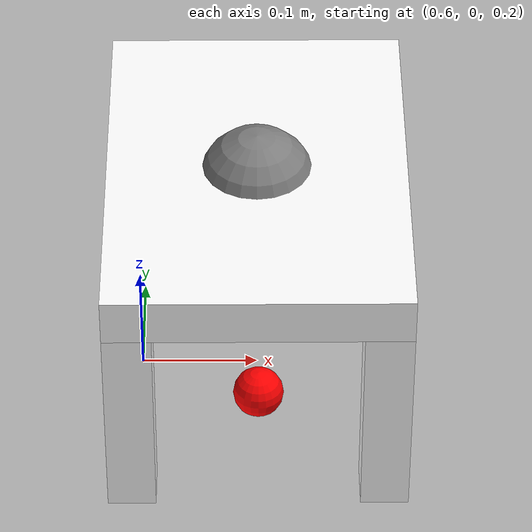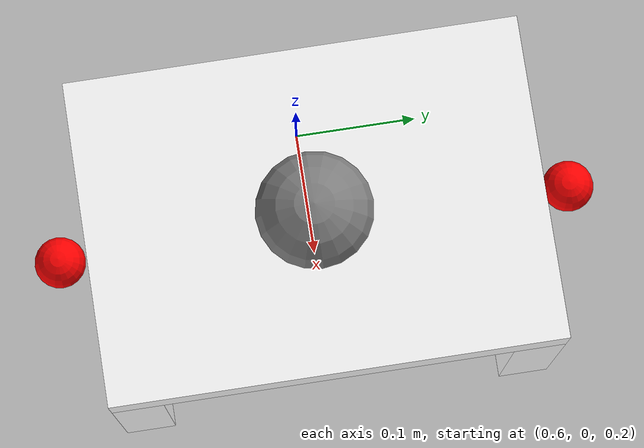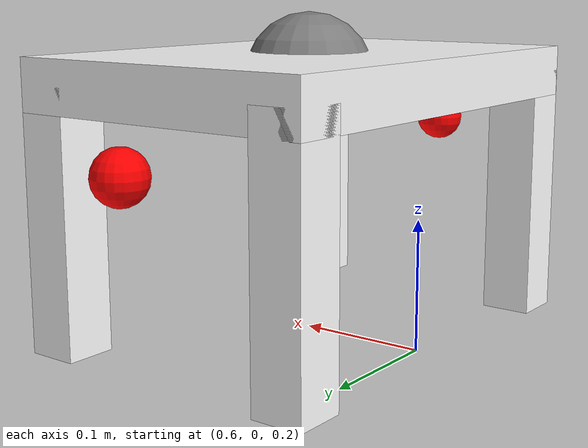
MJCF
<mujoco model="stool">
  <compiler angle="radian" />

  <default>
    <default class="stool_leg">
      <geom type="box" size="0.02 0.02 0.1"/>
    </default>
  </default>

  <asset>
    <material name="white_wood" rgba="1 1 1 1" />
  </asset>

  <worldbody>
   <body name="stool" pos="0.7 0.0 0.4">
      <inertial mass="2.0" pos="0.0 0 -0.2" diaginertia="0.0334 0.02167 0.04167"/>

      <freejoint name="stool_low_root" />
      <site name="stool_root" pos="0 0 0" size="0.05" type="sphere" rgba="0.5 0.5 0.5 1"/>
      <site name="left_hand_contact" pos="0 0.2 -0.05" size="0.02" type="sphere" rgba="1 0 0 1"/>
      <site name="right_hand_contact" pos="0 -0.2 -0.05" size="0.02" type="sphere" rgba="1 0 0 1"/>

      <geom name="seat" type="box" size="0.125 0.175 0.02" pos="0 0 0" material="white_wood"/>

      <geom name="leg1" class="stool_leg" pos="0.105 0.155 -0.1" material="white_wood"/>
      <geom name="leg2" class="stool_leg" pos="0.105 -0.155 -0.1" material="white_wood"/>
      <geom name="leg3" class="stool_leg" pos="-0.105 0.155 -0.1" material="white_wood"/>
      <geom name="leg4" class="stool_leg" pos="-0.105 -0.155 -0.1" material="white_wood"/>
    </body>
  </worldbody>

  <sensor>
    <framepos name="stool_pos" objtype="xbody" objname="stool"/>
    <framequat name="stool_quat" objtype="xbody" objname="stool"/>
  </sensor>
</mujoco>
